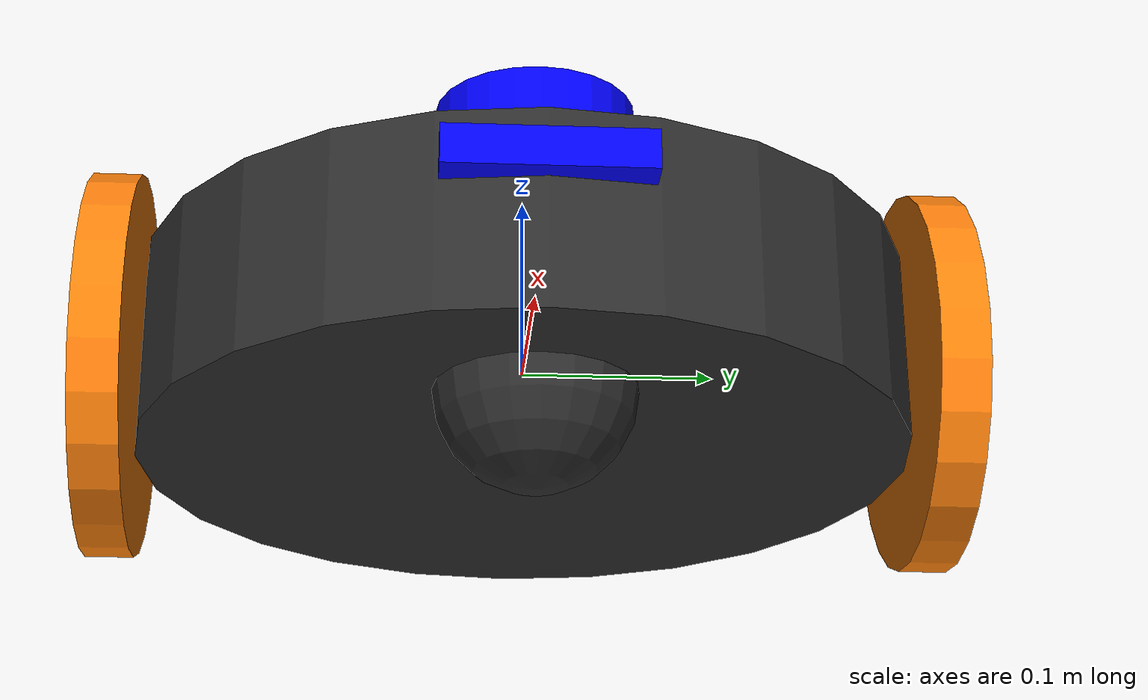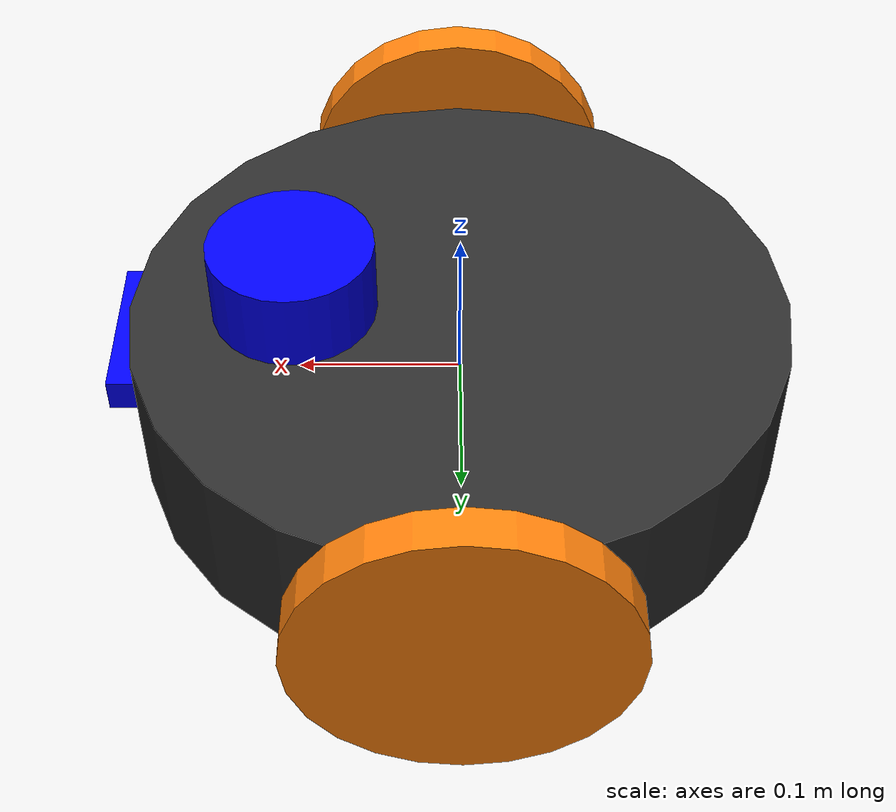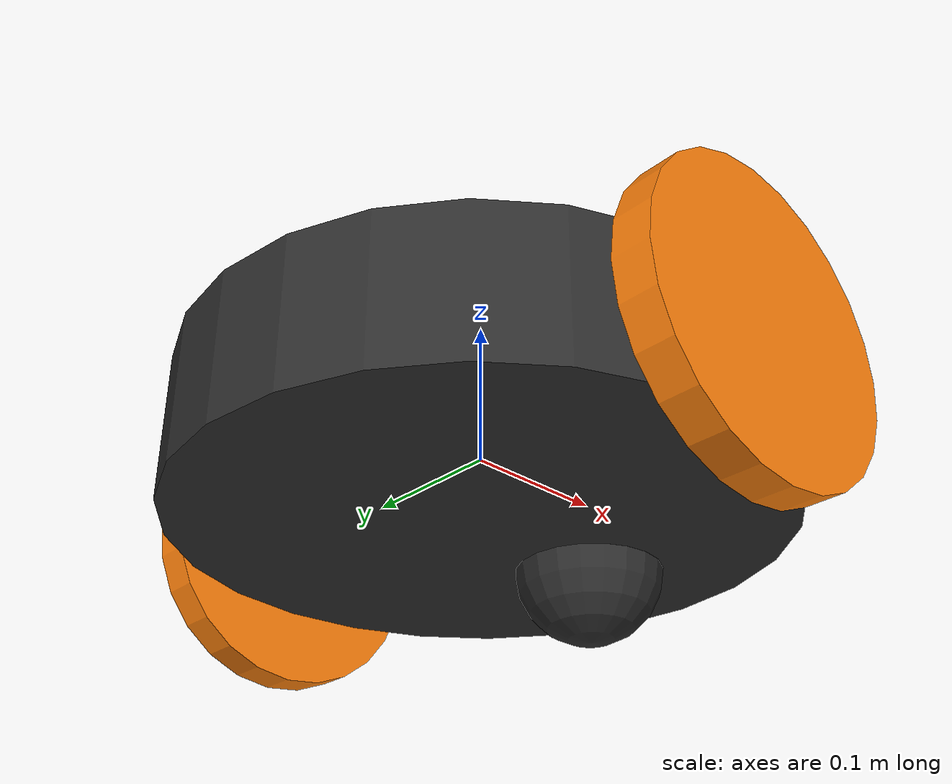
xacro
<?xml version="1.0"?>
<robot name="simple_base" xmlns:xacro="http://wiki.ros.org/xacro">
  <xacro:property name="M_PI" value="3.14159265"/>
  <!-- links -->
  <link name="base_footprint"/>
  <link name="base_link">
    <visual>
      <geometry>
        <cylinder length="0.1" radius="0.2"/>
      </geometry>
      <material name="DarkGray">
        <color rgba="0.175 0.175 0.175 1"/>
      </material>
    </visual>
    <collision>
      <geometry>
        <cylinder length="0.1" radius="0.2"/>
      </geometry>
    </collision>
    <inertial>
      <origin rpy="0 0 0" xyz="0 0.0 0"/>
        <mass value="20"/>
      <inertia ixx="0.21667" ixy="0" ixz="0" iyy="0.21667" iyz="0" izz="0.4"/>
    </inertial>
  </link>
  <link name="right_wheel_link">
    <visual>
      <geometry>
        <cylinder length="0.025" radius="0.1"/>
      </geometry>
      <material name="Orange">
        <color rgba="1.0 0.5088 0.0468 1"/>
      </material>
    </visual>
    <collision>
      <geometry>
        <cylinder length="0.025" radius="0.1"/>
      </geometry>
    </collision>
    <inertial>
      <origin rpy="0 0 0" xyz="0 0 0"/>
        <mass value="1"/>
      <inertia ixx="0.00255" ixy="0" ixz="0" iyy="0.00255" iyz="0" izz="0.005"/>
    </inertial>
  </link>
  <link name="left_wheel_link">
    <visual>
      <geometry>
        <cylinder length="0.025" radius="0.1"/>
      </geometry>
      <material name="Orange">
        <color rgba="1.0 0.5088 0.0468 1"/>
      </material>
    </visual>
    <collision>
      <geometry>
        <cylinder length="0.025" radius="0.1"/>
      </geometry>
    </collision>
    <inertial>
      <origin rpy="0 0 0" xyz="0 0 0"/>
        <mass value="1"/>
      <inertia ixx="0.00255" ixy="0" ixz="0" iyy="0.00255" iyz="0" izz="0.005"/>
    </inertial>
  </link>
  <link name="caster_wheel_link">
    <visual>
      <geometry>
        <sphere radius="0.05"/>
      </geometry>
      <material name="DarkGray">
        <color rgba="0.175 0.175 0.175 1"/>
      </material>
    </visual>
    <collision>
      <geometry>
        <sphere radius="0.05"/>
      </geometry>
    </collision>
    <inertial>
      <origin rpy="0 0 0" xyz="0 0 0"/>
        <mass value="1"/>
      <inertia ixx="0.001" ixy="0" ixz="0" iyy="0.001" iyz="0" izz="0.001"/>
    </inertial>
  </link>
  <link name="laser_link">
    <visual>
      <geometry>
        <cylinder length="0.05" radius="0.05"/>
      </geometry>
      <material name="Blue">
        <color rgba="0 0 1 1"/>
      </material>
    </visual>
    <collision>
      <geometry>
        <cylinder length="0.05" radius="0.05"/>
      </geometry>
    </collision>
    <inertial>
      <origin rpy="0 0 0" xyz="0 0 0"/>
        <mass value="1"/>
      <inertia ixx="0.00083" ixy="0" ixz="0" iyy="0.00083" iyz="0" izz="0.00125"/>
    </inertial>
  </link>
  <link name="camera_link">
    <visual>
      <geometry>
        <box size="0.02 0.1 0.02"/>
      </geometry>
      <material name="Blue">
        <color rgba="0 0 1 1"/>
      </material>
    </visual>
    <collision>
      <geometry>
        <box size="0.02 0.1 0.02"/>
      </geometry>
    </collision>
    <inertial>
      <origin rpy="0 0 0" xyz="0 0 0"/>
        <mass value="0.2"/>
      <inertia ixx="0.00017" ixy="0" ixz="0" iyy="0.000013" iyz="0" izz="0.00017"/>
    </inertial>
  </link>
  <link name="imu_link"/>

  <!-- joints -->
  <joint name="base_footprint_joint" type="fixed">
    <parent link="base_footprint"/>
    <child link="base_link"/>
    <origin xyz="0 0 0" rpy="0 0 0"/>
  </joint>
  <joint name="right_wheel_joint" type="continuous">
    <origin rpy="-${M_PI/2} 0 0" xyz="0 -0.2125 0"/>
    <parent link="base_link"/>
    <child link="right_wheel_link"/>
    <axis xyz="0 0 1"/>
  </joint>
  <joint name="left_wheel_joint" type="continuous">
    <origin rpy="-${M_PI/2} 0 0" xyz="0 0.2125 0"/>
    <parent link="base_link"/>
    <child link="left_wheel_link"/>
    <axis xyz="0 0 1"/>
  </joint>
  <joint name="caster_wheel_joint" type="fixed">
    <origin rpy="0 0 0" xyz="0.1 0 -0.05"/>
    <parent link="base_link"/>
    <child link="caster_wheel_link"/>
  </joint>
  <joint name="laser_joint" type="fixed">
    <origin rpy="0 0 0" xyz="0.1 0 0.075"/>
    <parent link="base_link"/>
    <child link="laser_link"/>
  </joint>
  <joint name="camera_joint" type="fixed">
    <origin rpy="0 0 0" xyz="0.2 0 0.025"/>
    <parent link="base_link"/>
    <child link="camera_link"/>
  </joint>
  <joint name="imu_joint" type="fixed">
    <origin rpy="0 0 0" xyz="0 0 0.05"/>
    <parent link="base_link"/>
    <child link="imu_link"/>
  </joint>

</robot>
